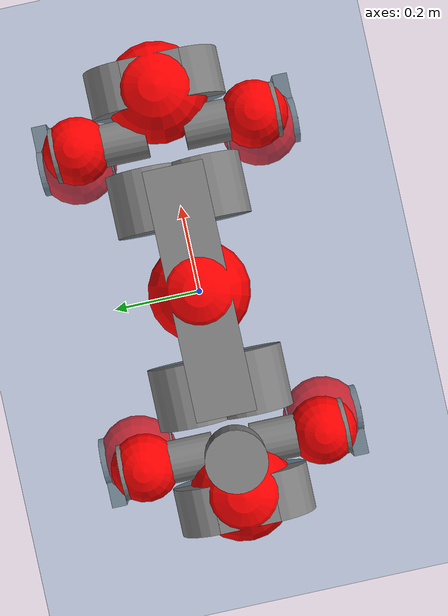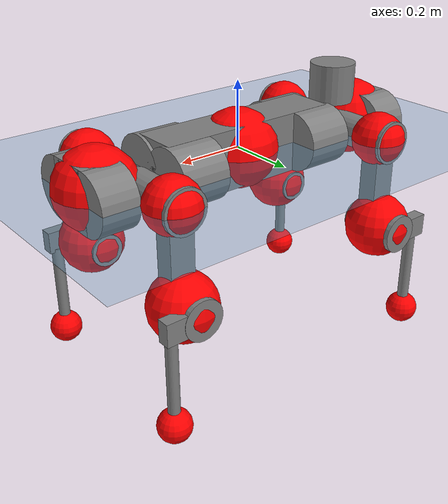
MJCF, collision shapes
<mujoco model="anymal_c">
  <compiler angle="radian" assetdir="assets" balanceinertia="true" inertiafromgeom="false"/>

  <option timestep="0.005" density="1.2" viscosity="2e-05"/>

  <size nkey="1"/>

  <visual>
    <quality shadowsize="8192"/>
    <map shadowclip="0.5"/>
  </visual>

  <default>
    <default class="/">
      <material specular="0" shininess="0.25"/>
      <geom contype="0" conaffinity="0" group="1" solref="-1000 -80"/>
      <site size="0.01 0.005 0.005" group="5"/>
      <general forcelimited="true" forcerange="-80 80" biastype="affine" gainprm="80" biasprm="0 -80 -2"/>
      <default class="anymal_c">
        <joint armature="0.01" damping="0.01" frictionloss="0.1"/>
        <default class="visual">
          <geom type="mesh" group="2"/>
          <default class="visual_zflip"/>
        </default>
        <default class="collision">
          <geom type="cylinder" group="3"/>
          <default class="foot">
            <geom size="0.03 0 0" type="sphere" condim="6" priority="1" friction="0.8 0.02 0.01" solimp="0.015 1 0.03"/>
          </default>
        </default>
      </default>
      <default class="reward_collision_sphere">
        <geom group="5" rgba="1 0 0 1"/>
      </default>
    </default>
  </default>

  <asset>
    <texture type="skybox" colorspace="auto" name="//unnamed_texture_0" builtin="gradient" rgb1="0.95 0.95 0.95" rgb2="0.95 0.95 0.95" width="100" height="600"/>
    <texture type="2d" colorspace="auto" name="texplane" builtin="checker" rgb1="0.345 0.575 0.748" rgb2="0.345 0.575 0.748" markrgb="1 1 1" width="512" height="512"/>
    <texture type="2d" colorspace="linear" name="base" file="base.png"/>
    <texture type="2d" colorspace="linear" name="top_shell" file="top_shell.png"/>
    <texture type="2d" colorspace="linear" name="bottom_shell" file="bottom_shell.png"/>
    <texture type="2d" colorspace="linear" name="remote" file="remote.png"/>
    <texture type="2d" colorspace="linear" name="hatch" file="hatch.png"/>
    <texture type="2d" colorspace="linear" name="handle" file="handle.png"/>
    <texture type="2d" colorspace="linear" name="face" file="face.png"/>
    <texture type="2d" colorspace="linear" name="battery" file="battery.png"/>
    <texture type="2d" colorspace="linear" name="lidar_cage" file="lidar_cage.png"/>
    <texture type="2d" colorspace="linear" name="depth_camera" file="depth_camera.png"/>
    <texture type="2d" colorspace="linear" name="wide_angle_camera" file="wide_angle_camera.png"/>
    <texture type="2d" colorspace="linear" name="lidar" file="lidar.png"/>
    <texture type="2d" colorspace="linear" name="drive" file="drive.png"/>
    <texture type="2d" colorspace="linear" name="hip_l" file="hip_l.png"/>
    <texture type="2d" colorspace="linear" name="shank_l" file="shank_l.png"/>
    <texture type="2d" colorspace="linear" name="foot" file="foot.png"/>
    <texture type="2d" colorspace="linear" name="thigh" file="thigh.png"/>
    <texture type="2d" colorspace="linear" name="shank_r" file="shank_r.png"/>
    <texture type="2d" colorspace="linear" name="hip_r" file="hip_r.png"/>
    <material name="MatPlane" class="/" texture="texplane" texuniform="true" texrepeat="2 2" specular="0.9" shininess="0.5"/>
    <material name="black_plastic" class="/" rgba="0.007 0.007 0.007 1"/>
    <material name="green" class="/" rgba="0.052 0.178 0.033 1"/>
    <material name="red" class="/" rgba="0.178 0.006 0.005 1"/>
    <material name="yellow" class="/" rgba="0.178 0.119 0.006 1"/>
    <material name="lwl" class="/" rgba="0.8 0.8 0.8 1"/>
    <material name="base" class="/" texture="base"/>
    <material name="top_shell" class="/" texture="top_shell"/>
    <material name="bottom_shell" class="/" texture="bottom_shell"/>
    <material name="hip_l" class="/" texture="hip_l"/>
    <material name="thigh" class="/" texture="thigh"/>
    <material name="shank_l" class="/" texture="shank_l"/>
    <material name="foot" class="/" texture="foot"/>
    <material name="hip_r" class="/" texture="hip_r"/>
    <material name="shank" class="/" texture="shank_r"/>
    <material name="hatch" class="/" texture="hatch"/>
    <material name="remote" class="/" texture="remote"/>
    <material name="handle" class="/" texture="handle"/>
    <material name="face" class="/" texture="face"/>
    <material name="depth_camera" class="/" texture="depth_camera"/>
    <material name="wide_angle_camera" class="/" texture="wide_angle_camera"/>
    <material name="battery" class="/" texture="battery"/>
    <material name="lidar_cage" class="/" texture="lidar_cage"/>
    <material name="lidar" class="/" texture="lidar"/>
    <material name="drive" class="/" texture="drive"/>
    <mesh name="base_0" class="/" file="base_0.obj"/>
    <mesh name="base_1" class="/" file="base_1.obj"/>
    <mesh name="base_2" class="/" file="base_2.obj"/>
    <mesh name="base_3" class="/" file="base_3.obj"/>
    <mesh name="base_4" class="/" file="base_4.obj"/>
    <mesh name="base_5" class="/" file="base_5.obj"/>
    <mesh name="top_shell" class="/" file="top_shell.obj"/>
    <mesh name="bottom_shell" class="/" file="bottom_shell.obj"/>
    <mesh name="remote" class="/" file="remote.obj"/>
    <mesh name="handle" class="/" file="handle.obj"/>
    <mesh name="face" class="/" file="face.obj"/>
    <mesh name="wide_angle_camera" class="/" file="wide_angle_camera.obj"/>
    <mesh name="depth_camera" class="/" file="depth_camera.obj"/>
    <mesh name="battery" class="/" file="battery.obj"/>
    <mesh name="lidar_cage" class="/" file="lidar_cage.obj"/>
    <mesh name="lidar" class="/" file="lidar.obj"/>
    <mesh name="drive" class="/" file="drive.obj"/>
    <mesh name="hip_l" class="/" file="hip_l.obj"/>
    <mesh name="thigh" class="/" file="thigh.obj"/>
    <mesh name="shank_l" class="/" file="shank_l.obj"/>
    <mesh name="foot" class="/" file="foot.obj"/>
    <mesh name="hip_r" class="/" file="hip_r.obj"/>
    <mesh name="hatch" class="/" file="hatch.obj"/>
    <mesh name="shank_r" class="/" file="shank_r.obj"/>
  </asset>

  <worldbody>
    <geom name="floor" class="/" size="100 100 0.125" type="plane" group="0" material="MatPlane"/>
    <light name="toplight_shadow" class="/" pos="0 0 5" dir="0.0990148 0.0990148 -0.990148" type="directional" ambient="0.04 0.04 0.04" diffuse="0.55 0.55 0.55" specular="0.12 0.12 0.12"/>
    <light name="toplight_fill" class="/" pos="0 0 5" dir="0.0990148 0.0990148 -0.990148" type="directional" castshadow="false" ambient="0.04 0.04 0.04" diffuse="0.3 0.3 0.3" specular="0.08 0.08 0.08"/>
    <body name="trunk" childclass="anymal_c" pos="0.00053742 4.96643e-05 -0.000966024" quat="1 -0.000143609 -0.000338416 -0.000311612">
      <inertial pos="0.000159272 -0.00147425 0.0485646" quat="0.499411 0.500344 0.500593 0.499651" mass="19.3405" diaginertia="0.794322 0.539841 0.191244"/>
      <joint name="//unnamed_joint_0" type="free" armature="0" damping="0" frictionloss="0"/>
      <geom name="//unnamed_geom_1" class="visual" material="green" mesh="base_0"/>
      <geom name="//unnamed_geom_2" class="visual" material="yellow" mesh="base_1"/>
      <geom name="//unnamed_geom_3" class="visual" material="red" mesh="base_2"/>
      <geom name="//unnamed_geom_4" class="visual" material="black_plastic" mesh="base_3"/>
      <geom name="//unnamed_geom_5" class="visual" material="lwl" mesh="base_4"/>
      <geom name="//unnamed_geom_6" class="visual" material="base" mesh="base_5"/>
      <geom name="trunk_1" class="collision" size="0.289179 0.0698017 0.0897451" type="box"/>
      <geom name="trunk_2" class="collision" size="0.0897451 0.0722946" pos="0.227201 0.0680042 0" quat="0.707107 0 0.707107 0"/>
      <geom name="trunk_3" class="collision" size="0.0897451 0.0722946" pos="-0.227201 0.0680042 0" quat="0.707107 0 0.707107 0"/>
      <geom name="trunk_4" class="collision" size="0.0897451 0.0722946" pos="0.227201 -0.0680042 0" quat="0.707107 0 0.707107 0"/>
      <geom name="trunk_5" class="collision" size="0.0897451 0.0722946" pos="-0.227201 -0.0680042 0" quat="0.707107 0 0.707107 0"/>
      <geom name="//unnamed_geom_12" class="visual" material="top_shell" mesh="top_shell"/>
      <geom name="//unnamed_geom_13" class="visual" material="bottom_shell" mesh="bottom_shell"/>
      <geom name="//unnamed_geom_14" class="visual" material="remote" mesh="remote"/>
      <geom name="//unnamed_geom_15" class="visual" material="handle" mesh="handle"/>
      <geom name="//unnamed_geom_16" class="visual" pos="0.432987 0 0" quat="1 0 0 0" material="face" mesh="face"/>
      <geom name="trunk_6" class="collision" size="0.0548442 0.0698017 0.0897451" pos="0.49044 0 0" type="box"/>
      <geom name="//unnamed_geom_18" class="collision" size="0.0897451 0.0548442" pos="0.49044 0.0680042 0" quat="0.707107 0 0.707107 0"/>
      <geom name="//unnamed_geom_19" class="collision" size="0.0897451 0.0548442" pos="0.49044 -0.0680042 0" quat="0.707107 0 0.707107 0"/>
      <geom name="//unnamed_geom_20" class="visual" pos="0.482237 0 -0.0279562" quat="0.965926 0 0.258819 0" material="depth_camera" mesh="depth_camera"/>
      <geom name="//unnamed_geom_21" class="visual" pos="0.53588 0 0.0146019" material="wide_angle_camera" mesh="wide_angle_camera"/>
      <geom name="//unnamed_geom_22" class="visual_zflip" pos="-0.432987 0 0" quat="0 0 0 1" material="face" mesh="face"/>
      <geom name="trunk_7" class="collision" size="0.0548442 0.0698017 0.0897451" pos="-0.49044 0 0" quat="0 0 0 1" type="box"/>
      <geom name="//unnamed_geom_24" class="collision" size="0.0897451 0.0548442" pos="-0.49044 -0.0680042 0" quat="0 -0.707107 0 0.707107"/>
      <geom name="//unnamed_geom_25" class="collision" size="0.0897451 0.0548442" pos="-0.49044 0.0680042 0" quat="0 -0.707107 0 0.707107"/>
      <geom name="//unnamed_geom_26" class="visual" pos="-0.482237 0 -0.0279562" quat="0 -0.258819 0 0.965926" material="depth_camera" mesh="depth_camera"/>
      <geom name="//unnamed_geom_27" class="visual_zflip" pos="-0.53588 0 0.0146019" quat="0 0 0 1" material="wide_angle_camera" mesh="wide_angle_camera"/>
      <geom name="//unnamed_geom_28" class="visual" material="battery" mesh="battery"/>
      <geom name="//unnamed_geom_29" class="visual" pos="0 0.0733178 0.0288616" quat="0.683013 -0.183013 0.183013 0.683013" material="depth_camera" mesh="depth_camera"/>
      <geom name="//unnamed_geom_30" class="visual" pos="0 -0.0733178 0.0288616" quat="0.683013 0.183013 0.183013 -0.683013" material="depth_camera" mesh="depth_camera"/>
      <geom name="//unnamed_geom_31" class="visual" pos="-0.380235 0 0.0716928" quat="1 0 0 0" material="lidar_cage" mesh="lidar_cage"/>
      <geom name="trunk_8" class="collision" size="0.0698017 0.05983" pos="-0.380235 0 0.130218"/>
      <geom name="//unnamed_geom_33" class="visual" pos="-0.380235 -2.87238e-05 0.138704" quat="0.707107 0 0 -0.707107" material="lidar" mesh="lidar"/>
      <geom name="//unnamed_geom_34" class="visual" pos="0.313276 0.101036 -6.76713e-11" quat="0.258819 0.965926 0 0" material="drive" mesh="drive"/>
      <geom name="//unnamed_geom_35" class="visual" pos="0.313276 -0.101036 6.76713e-11" quat="0.258819 -0.965926 0 0" material="drive" mesh="drive"/>
      <geom name="//unnamed_geom_36" class="visual" pos="-0.313276 0.101036 6.76713e-11" quat="0 0 0.965926 -0.258819" material="drive" mesh="drive"/>
      <geom name="//unnamed_geom_37" class="visual" pos="-0.313276 -0.101036 -6.76713e-11" quat="0 0 -0.965926 -0.258819" material="drive" mesh="drive"/>
      <geom name="//unnamed_geom_38" class="visual" pos="0.121174 0 0.0712051" quat="1 0 0 0" material="hatch" mesh="hatch"/>
      <geom name="//unnamed_geom_39" class="reward_collision_sphere" size="0.11966"/>
      <geom name="//unnamed_geom_40" class="reward_collision_sphere" size="0.11966" pos="0.470071 0 0"/>
      <geom name="//unnamed_geom_41" class="reward_collision_sphere" size="0.11966" pos="-0.470071 0 0"/>
      <site name="imu" pos="0.268613 0.00800707 0.0365225" size="0.00997167"/>
      <camera name="track" pos="0 -1.94298 0" quat="0.707107 0.707107 0 0" mode="trackcom"/>
      <camera name="ego_camera" pos="0.470071 0 -0.0390165" quat="-0.5 -0.5 0.5 0.5"/>
      <body name="LF_HIP" pos="0.313271 0.100939 0.000154702" quat="0.258986 0.965881 -6.20165e-05 -9.11975e-05">
        <inertial pos="0.0591389 -0.0150113 -0.00847772" quat="-0.127666 0.70975 -0.134845 0.679539" mass="2.65296" diaginertia="0.00705661 0.00408946 0.00281907"/>
        <joint name="LF_HAA" pos="0 0 0" axis="0.999992 0.00371762 0.00165629" range="-0.721211 0.469218" armature="0.00995085" damping="0.00814431" frictionloss="0.0998049"/>
        <geom name="//unnamed_geom_42" class="visual" pos="0 -3.9808e-06 6.53843e-07" quat="0.258819 -0.965926 0 0" material="hip_l" mesh="hip_l"/>
        <geom name="//unnamed_geom_43" class="visual" pos="0.0625716 -0.0748576 -0.0432481" quat="0.183013 -0.683013 0.683013 0.183013" material="drive" mesh="drive"/>
        <geom name="//unnamed_geom_44" class="collision" size="0.0498584 0.0698017" pos="0.0625716 -0.0116188 -0.00673522" quat="-0.353553 -0.612372 0.612372 -0.353553"/>
        <body name="LF_THIGH" pos="0.0635528 -0.0691543 -0.0413443" quat="0.182735 -0.683519 0.682542 0.183155">
          <inertial pos="0.0324636 0.000185652 -0.24026" quat="0.993343 -0.00217924 -0.0801023 0.0827514" mass="3.01841" diaginertia="0.0374465 0.0250281 0.00363489"/>
          <joint name="LF_HFE" pos="0 0 0" axis="1 -0.000383106 -1.85065e-06" stiffness="0.00511032" range="-3.11883 3.13604" armature="0.0102206" damping="0.0116709" frictionloss="0.102597"/>
          <geom name="//unnamed_geom_45" class="visual" pos="0.00145465 2.29218e-06 0" quat="0.707107 0 0 -0.707107" material="thigh" mesh="thigh"/>
          <geom name="//unnamed_geom_46" class="collision" size="0.0648159 0.0398867" pos="0.0417841 0 0" quat="0.5 0.5 -0.5 -0.5"/>
          <geom name="//unnamed_geom_47" class="collision" size="0.0373938 0.029915 0.140914" pos="0.031338 0 -0.137839" quat="0.707107 0 0 -0.707107" type="box"/>
          <geom name="//unnamed_geom_48" class="visual" pos="0.104774 0 -0.277992" quat="1 0 0 0" material="drive" mesh="drive"/>
          <geom name="//unnamed_geom_49" class="collision" size="0.0498584 0.0698017" pos="0.0316514 0 -0.277992" quat="0.707107 0 0.707107 0"/>
          <geom name="//unnamed_geom_50" class="reward_collision_sphere" size="0.0797734" pos="0.026115 0 0"/>
          <body name="LF_SHANK" pos="0.104294 0.00097783 -0.279041" quat="1 9.14206e-05 -0.000127587 9.93646e-05">
            <inertial pos="0.00557791 -0.0596838 -0.0778138" quat="0.992981 -0.115456 0.000484414 -0.0256442" mass="0.583148" diaginertia="0.0124503 0.00802945 0.000984608"/>
            <joint name="LF_KFE" pos="0 0 0" axis="0.999996 0.00179964 -0.00211207" range="-3.14308 3.13729" armature="0.00953169" damping="0.0125634" frictionloss="0.0983785"/>
            <geom name="//unnamed_geom_51" class="visual" pos="0.000474328 0.00252914 0" quat="0.707107 0 0 -0.707107" material="shank_l" mesh="shank_l"/>
            <geom name="LF_kfe_act" class="collision" size="0.05983 0.0199433" pos="0.020892 0 0" quat="0.5 0.5 -0.5 -0.5"/>
            <geom name="//unnamed_geom_53" class="collision" size="0.0573361 0.0336544 0.0189462" pos="0.020892 -0.0558597 0" quat="0.5 0.5 -0.5 -0.5" type="box"/>
            <geom name="//unnamed_geom_54" class="visual" pos="0.0136319 -0.0846274 -0.32966" quat="0.382683 0 0 -0.92388" material="foot" mesh="foot"/>
            <geom name="LF_calf" class="collision" size="0.0174504 0.140852" pos="0.013632 -0.0854425 -0.16483" quat="0.707107 0 0 -0.707107"/>
            <geom name="LF_foot" class="foot" size="0.0297126" pos="0.013632 -0.0854425 -0.307713" quat="0.707107 0 0 -0.707107"/>
            <geom name="//unnamed_geom_57" class="reward_collision_sphere" size="0.0997167" pos="-0.0522301 0 0"/>
            <geom name="//unnamed_geom_58" class="reward_collision_sphere" size="0.0498584" pos="0.013632 -0.0854425 -0.307713"/>
            <site name="LF_foot" class="foot" pos="0.013632 -0.0854425 -0.307713" quat="0.707107 0 0 -0.707107" size="0.00997167"/>
          </body>
        </body>
      </body>
      <body name="RF_HIP" pos="0.312073 -0.101236 0.000937335" quat="0.25876 -0.965942 -1.84217e-05 -9.95236e-05">
        <inertial pos="0.0595997 0.0129961 -0.00812455" quat="0.131721 0.684769 0.13342 0.70423" mass="2.75186" diaginertia="0.00723879 0.00436151 0.00289621"/>
        <joint name="RF_HAA" pos="0 0 0" axis="0.999998 -0.000554942 0.00186253" range="-0.485824 0.721075" armature="0.0101527" damping="0.00618822" frictionloss="0.0947405"/>
        <geom name="//unnamed_geom_59" class="visual" pos="0 3.98077e-06 6.53841e-07" quat="0.258819 0.965926 0 0" material="hip_r" mesh="hip_r"/>
        <geom name="//unnamed_geom_60" class="visual" pos="0.0625716 0.0748576 -0.0432481" quat="0.183013 0.683013 0.683013 -0.183013" material="drive" mesh="drive"/>
        <geom name="//unnamed_geom_61" class="collision" size="0.0498584 0.0698017" pos="0.0625716 0.0116188 -0.00673522" quat="-0.353553 0.612372 0.612372 0.353553"/>
        <body name="RF_THIGH" pos="0.0622173 0.0713134 -0.0423575" quat="0.183285 0.683101 0.682806 -0.183181">
          <inertial pos="0.0340752 0.000815755 -0.238715" quat="0.99258 -0.00440548 -0.0827911 0.0889415" mass="3.06999" diaginertia="0.0377112 0.0255139 0.00377361"/>
          <joint name="RF_HFE" pos="0 0 0" axis="1 -0.000470912 3.19254e-05" stiffness="0.00377101" range="-3.16068 3.13672" armature="0.0100384" damping="0.0105537" frictionloss="0.0947187"/>
          <geom name="//unnamed_geom_62" class="visual" pos="0.00145465 2.29218e-06 0" quat="0.707107 0 0 -0.707107" material="thigh" mesh="thigh"/>
          <geom name="//unnamed_geom_63" class="collision" size="0.0648159 0.0398867" pos="0.0417841 0 0" quat="0.5 0.5 0.5 0.5"/>
          <geom name="//unnamed_geom_64" class="collision" size="0.0373938 0.029915 0.140914" pos="0.031338 0 -0.137839" quat="0.707107 0 0 0.707107" type="box"/>
          <geom name="//unnamed_geom_65" class="visual" pos="0.104774 0 -0.277992" quat="1 0 0 0" material="drive" mesh="drive"/>
          <geom name="//unnamed_geom_66" class="collision" size="0.0498584 0.0698017" pos="0.0316514 0 -0.277992" quat="0.707107 0 0.707107 0"/>
          <geom name="//unnamed_geom_67" class="reward_collision_sphere" size="0.0797734" pos="0.026115 0 0"/>
          <body name="RF_SHANK" pos="0.105012 0.000514615 -0.277474" quat="1 -0.000125071 -0.000205011 -0.000102536">
            <inertial pos="0.00540163 0.0594743 -0.0785709" quat="0.993007 0.116265 0.00702313 0.0192635" mass="0.585086" diaginertia="0.0125929 0.00816052 0.000999645"/>
            <joint name="RF_KFE" pos="0 0 0" axis="0.999997 -0.000699891 -0.00242083" range="-3.16925 3.14413" armature="0.0104268" damping="0.0172783" frictionloss="0.0949382"/>
            <geom name="//unnamed_geom_68" class="visual" pos="0.000474325 -0.00252914 0" quat="0.707107 0 0 0.707107" material="shank" mesh="shank_r"/>
            <geom name="RF_kfe_act" class="collision" size="0.05983 0.0199433" pos="0.020892 0 0" quat="0.5 0.5 0.5 0.5"/>
            <geom name="//unnamed_geom_70" class="collision" size="0.0573361 0.0336544 0.0189462" pos="0.020892 0.0558597 0" quat="0.5 0.5 0.5 0.5" type="box"/>
            <geom name="//unnamed_geom_71" class="visual" pos="0.0136322 0.0846274 -0.32966" quat="0.382683 0 0 0.92388" material="foot" mesh="foot"/>
            <geom name="RF_calf" class="collision" size="0.0174504 0.140852" pos="0.013632 0.0854425 -0.16483" quat="0.707107 0 0 0.707107"/>
            <geom name="RF_foot" class="foot" size="0.0280685" pos="0.013632 0.0854425 -0.307713" quat="0.707107 0 0 0.707107"/>
            <geom name="//unnamed_geom_74" class="reward_collision_sphere" size="0.0997167" pos="-0.0522301 0 0"/>
            <geom name="//unnamed_geom_75" class="reward_collision_sphere" size="0.0498584" pos="0.013632 0.0854425 -0.307713"/>
            <site name="RF_foot" class="foot" pos="0.013632 0.0854425 -0.307713" quat="0.707107 0 0 0.707107" size="0.00997167"/>
          </body>
        </body>
      </body>
      <body name="LH_HIP" pos="-0.311113 0.101101 -0.000436073" quat="3.27478e-06 -2.13786e-06 0.965923 -0.258829">
        <inertial pos="0.0592134 0.0146603 -0.0101186" quat="0.134689 0.677565 0.131552 0.710956" mass="2.82299" diaginertia="0.00767184 0.00436914 0.00299837"/>
        <joint name="LH_HAA" pos="0 0 0" axis="0.99998 -0.00623113 0.00105075" range="-0.487258 0.702238" armature="0.00974301" damping="0" frictionloss="0.100061"/>
        <geom name="//unnamed_geom_76" class="visual" pos="0 3.98077e-06 6.53841e-07" quat="-0.258819 -0.965926 0 0" material="hip_r" mesh="hip_r"/>
        <geom name="//unnamed_geom_77" class="visual" pos="0.0625716 0.0748576 -0.0432481" quat="0.183013 0.683013 0.683013 -0.183013" material="drive" mesh="drive"/>
        <geom name="//unnamed_geom_78" class="collision" size="0.0498584 0.0698017" pos="0.0625716 0.0116188 -0.00673522" quat="-0.353553 0.612372 0.612372 0.353553"/>
        <body name="LH_THIGH" pos="0.0621803 0.0713639 -0.0422412" quat="0.182701 0.683413 0.682711 -0.182954">
          <inertial pos="0.0300119 -0.000985936 -0.241393" quat="0.992735 -0.00463597 -0.0810215 0.0888291" mass="3.07466" diaginertia="0.0365193 0.0258544 0.00363868"/>
          <joint name="LH_HFE" pos="0 0 0" axis="1 0.00033983 -0.000316097" stiffness="0.0019388" range="-3.12674 3.14083" armature="0.00994424" damping="0.00581536" frictionloss="0.100516"/>
          <geom name="//unnamed_geom_79" class="visual" pos="0.00145465 2.29218e-06 0" quat="0.707107 0 0 -0.707107" material="thigh" mesh="thigh"/>
          <geom name="//unnamed_geom_80" class="collision" size="0.0648159 0.0398867" pos="0.0417841 0 0" quat="0.5 0.5 -0.5 -0.5"/>
          <geom name="//unnamed_geom_81" class="collision" size="0.0373938 0.029915 0.140914" pos="0.031338 0 -0.137839" quat="0.707107 0 0 -0.707107" type="box"/>
          <geom name="//unnamed_geom_82" class="visual" pos="0.104774 0 -0.277992" quat="1 0 0 0" material="drive" mesh="drive"/>
          <geom name="//unnamed_geom_83" class="collision" size="0.0498584 0.0698017" pos="0.0316514 0 -0.277992" quat="0.707107 0 0.707107 0"/>
          <geom name="//unnamed_geom_84" class="reward_collision_sphere" size="0.0797734" pos="0.026115 0 0"/>
          <body name="LH_SHANK" pos="0.105409 -0.00158151 -0.276816" quat="1 5.4658e-05 -6.52526e-05 -3.5357e-06">
            <inertial pos="0.00492975 0.0607705 -0.0777551" quat="0.992856 0.116706 -0.000238187 0.0248475" mass="0.601019" diaginertia="0.0129984 0.00835307 0.0010059"/>
            <joint name="LH_KFE" pos="0 0 0" axis="0.999986 0.00184776 0.00504956" range="-3.12182 3.13809" armature="0.0108339" damping="0.0163744" frictionloss="0.0947233"/>
            <geom name="//unnamed_geom_85" class="visual" pos="0.000474325 -0.00252914 0" quat="-0.707107 0 0 -0.707107" material="shank" mesh="shank_r"/>
            <geom name="LH_kfe_act" class="collision" size="0.05983 0.0199433" pos="0.020892 0 0" quat="0.5 0.5 -0.5 -0.5"/>
            <geom name="//unnamed_geom_87" class="collision" size="0.0573361 0.0336544 0.0189462" pos="0.020892 0.0558597 0" quat="0.5 0.5 -0.5 -0.5" type="box"/>
            <geom name="//unnamed_geom_88" class="visual" pos="0.0136322 0.0846274 -0.32966" quat="-0.382683 0 0 -0.92388" material="foot" mesh="foot"/>
            <geom name="LH_calf" class="collision" size="0.0174504 0.140852" pos="0.013632 0.0854425 -0.16483" quat="0.707107 0 0 -0.707107"/>
            <geom name="LH_foot" class="foot" size="0.0297544" pos="0.013632 0.0854425 -0.307713" quat="0.707107 0 0 -0.707107"/>
            <geom name="//unnamed_geom_91" class="reward_collision_sphere" size="0.0997167" pos="-0.0522301 0 0"/>
            <geom name="//unnamed_geom_92" class="reward_collision_sphere" size="0.0498584" pos="0.013632 0.0854425 -0.307713"/>
            <site name="LH_foot" class="foot" pos="0.013632 0.0854425 -0.307713" quat="0.707107 0 0 -0.707107" size="0.00997167"/>
          </body>
        </body>
      </body>
      <body name="RH_HIP" pos="-0.310963 -0.10095 -0.000239358" quat="-8.46206e-05 -7.19591e-05 -0.965914 -0.258862">
        <inertial pos="0.0596156 -0.0156591 -0.0102751" quat="-0.119301 0.715828 -0.134682 0.674699" mass="2.71523" diaginertia="0.00708018 0.0041266 0.00283153"/>
        <joint name="RH_HAA" pos="0 0 0" axis="0.999953 -0.00902527 -0.00360243" range="-0.754286 0.478866" armature="0.0104394" damping="0.0125259" frictionloss="0.0998634"/>
        <geom name="//unnamed_geom_93" class="visual" pos="0 -3.9808e-06 6.53843e-07" quat="-0.258819 0.965926 0 0" material="hip_l" mesh="hip_l"/>
        <geom name="//unnamed_geom_94" class="visual" pos="0.0625716 -0.0748576 -0.0432481" quat="-0.183013 0.683013 -0.683013 -0.183013" material="drive" mesh="drive"/>
        <geom name="//unnamed_geom_95" class="collision" size="0.0498584 0.0698017" pos="0.0625716 -0.0116188 -0.00673522" quat="0.353553 0.612372 -0.612372 0.353553"/>
        <body name="RH_THIGH" pos="0.064449 -0.0712661 -0.0426238" quat="-0.182864 0.682742 -0.683257 -0.183259">
          <inertial pos="0.0323796 -0.000544622 -0.239891" quat="0.993162 -0.00518081 -0.0806826 0.0842194" mass="3.03443" diaginertia="0.0374808 0.0257988 0.00368299"/>
          <joint name="RH_HFE" pos="0 0 0" axis="1 0.000375464 0.000334888" range="-3.14851 3.15588" armature="0.00989029" damping="0.00470752" frictionloss="0.0986853"/>
          <geom name="//unnamed_geom_96" class="visual" pos="0.00145465 2.29218e-06 0" quat="0.707107 0 0 -0.707107" material="thigh" mesh="thigh"/>
          <geom name="//unnamed_geom_97" class="collision" size="0.0648159 0.0398867" pos="0.0417841 0 0" quat="0.5 0.5 0.5 0.5"/>
          <geom name="//unnamed_geom_98" class="collision" size="0.0373938 0.029915 0.140914" pos="0.031338 0 -0.137839" quat="0.707107 0 0 0.707107" type="box"/>
          <geom name="//unnamed_geom_99" class="visual" pos="0.104774 0 -0.277992" quat="1 0 0 0" material="drive" mesh="drive"/>
          <geom name="//unnamed_geom_100" class="collision" size="0.0498584 0.0698017" pos="0.0316514 0 -0.277992" quat="0.707107 0 0.707107 0"/>
          <geom name="//unnamed_geom_101" class="reward_collision_sphere" size="0.0797734" pos="0.026115 0 0"/>
          <body name="RH_SHANK" pos="0.104708 0.00143829 -0.277428" quat="1 0.000209377 -0.000752745 -0.000212141">
            <inertial pos="0.00674703 -0.0584189 -0.079334" quat="0.993095 -0.115123 -0.000687702 -0.0225348" mass="0.592507" diaginertia="0.0128297 0.00799749 0.000999015"/>
            <joint name="RH_KFE" pos="0 0 0" axis="0.999999 -0.000951691 0.00115489" stiffness="0.000786467" range="-3.12323 3.16561" armature="0.00996909" damping="0.0171891" frictionloss="0.0948779"/>
            <geom name="//unnamed_geom_102" class="visual" pos="0.000474328 0.00252914 0" quat="0.707107 0 0 -0.707107" material="shank_l" mesh="shank_l"/>
            <geom name="RH_kfe_act" class="collision" size="0.05983 0.0199433" pos="0.020892 0 0" quat="0.5 0.5 0.5 0.5"/>
            <geom name="//unnamed_geom_104" class="collision" size="0.0573361 0.0336544 0.0189462" pos="0.020892 -0.0558597 0" quat="0.5 0.5 0.5 0.5" type="box"/>
            <geom name="//unnamed_geom_105" class="visual" pos="0.0136319 -0.0846274 -0.32966" quat="0.382683 0 0 -0.92388" material="foot" mesh="foot"/>
            <geom name="RH_calf" class="collision" size="0.0174504 0.140852" pos="0.013632 -0.0854425 -0.16483" quat="0.707107 0 0 0.707107"/>
            <geom name="RH_foot" class="foot" size="0.0283219" pos="0.013632 -0.0854425 -0.307713" quat="0.707107 0 0 0.707107"/>
            <geom name="//unnamed_geom_108" class="reward_collision_sphere" size="0.0997167" pos="-0.0522301 0 0"/>
            <geom name="//unnamed_geom_109" class="reward_collision_sphere" size="0.0498584" pos="0.013632 -0.0854425 -0.307713"/>
            <site name="RH_foot" class="foot" pos="0.013632 -0.0854425 -0.307713" quat="0.707107 0 0 0.707107" size="0.00997167"/>
          </body>
        </body>
      </body>
    </body>
  </worldbody>

  <contact>
    <pair class="/" geom1="floor" geom2="LF_foot" name="//unnamed_contact_0"/>
    <pair class="/" geom1="floor" geom2="RF_foot" name="//unnamed_contact_1"/>
    <pair class="/" geom1="floor" geom2="LH_foot" name="//unnamed_contact_2"/>
    <pair class="/" geom1="floor" geom2="RH_foot" name="//unnamed_contact_3"/>
  </contact>

  <actuator>
    <general name="LF_HAA" class="/" joint="LF_HAA" forcerange="-79.0402 79.0402" gainprm="81.5247" biasprm="0 -81.5247 -1.93984"/>
    <general name="LF_HFE" class="/" joint="LF_HFE" forcerange="-74.237 74.237" gainprm="81.5247" biasprm="0 -81.5247 -1.93984"/>
    <general name="LF_KFE" class="/" joint="LF_KFE" forcerange="-82.5907 82.5907" gainprm="81.5247" biasprm="0 -81.5247 -1.93984"/>
    <general name="RF_HAA" class="/" joint="RF_HAA" forcerange="-80.6985 80.6985" gainprm="81.5247" biasprm="0 -81.5247 -1.93984"/>
    <general name="RF_HFE" class="/" joint="RF_HFE" forcerange="-82.7491 82.7491" gainprm="81.5247" biasprm="0 -81.5247 -1.93984"/>
    <general name="RF_KFE" class="/" joint="RF_KFE" forcerange="-79.9078 79.9078" gainprm="81.5247" biasprm="0 -81.5247 -1.93984"/>
    <general name="LH_HAA" class="/" joint="LH_HAA" forcerange="-80.0781 80.0781" gainprm="81.5247" biasprm="0 -81.5247 -1.93984"/>
    <general name="LH_HFE" class="/" joint="LH_HFE" forcerange="-79.5505 79.5505" gainprm="81.5247" biasprm="0 -81.5247 -1.93984"/>
    <general name="LH_KFE" class="/" joint="LH_KFE" forcerange="-77.4598 77.4598" gainprm="81.5247" biasprm="0 -81.5247 -1.93984"/>
    <general name="RH_HAA" class="/" joint="RH_HAA" forcerange="-78.8583 78.8583" gainprm="81.5247" biasprm="0 -81.5247 -1.93984"/>
    <general name="RH_HFE" class="/" joint="RH_HFE" forcerange="-84.1967 84.1967" gainprm="81.5247" biasprm="0 -81.5247 -1.93984"/>
    <general name="RH_KFE" class="/" joint="RH_KFE" forcerange="-79.1811 79.1811" gainprm="81.5247" biasprm="0 -81.5247 -1.93984"/>
  </actuator>

  <sensor>
    <gyro site="imu" name="imu_angular_velocity"/>
    <velocimeter site="imu" name="imu_linear_velocity"/>
    <framelinvel objtype="site" objname="LF_foot" name="LF_foot_global_linear_velocity"/>
    <framelinvel objtype="site" objname="RF_foot" name="RF_foot_global_linear_velocity"/>
    <framelinvel objtype="site" objname="LH_foot" name="LH_foot_global_linear_velocity"/>
    <framelinvel objtype="site" objname="RH_foot" name="RH_foot_global_linear_velocity"/>
  </sensor>

  <keyframe>
    <key name="home" qpos="0 0 0.55 1 0 0 0 0 0.4 -0.8 0 -0.4 0.8 0 -0.4 0.8 0 0.4 -0.8"/>
  </keyframe>
</mujoco>
